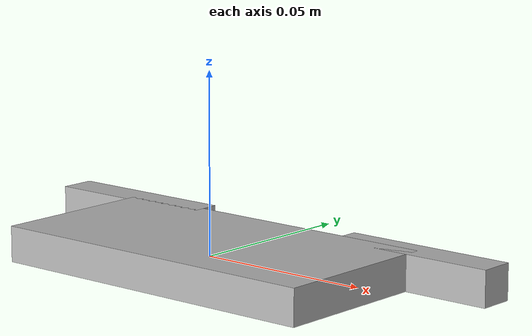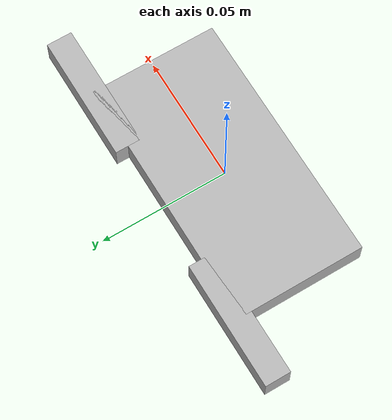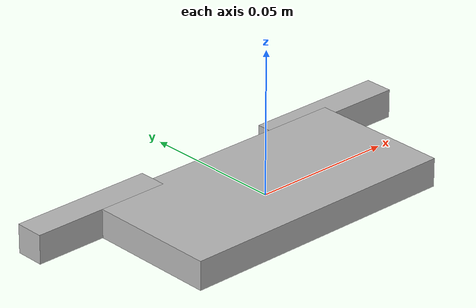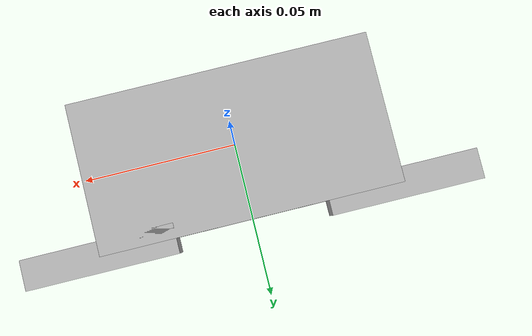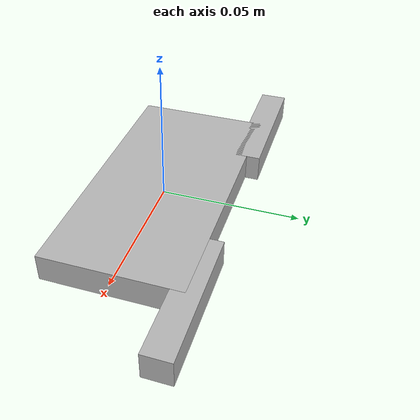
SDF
<?xml version="1.0" ?>
<sdf version="1.8">

  <world name="one_joint_gripper_world">

    <!-- LIGHT -->

    <light type="directional" name="sun">
        <cast_shadows>true</cast_shadows>
        <pose>0 0 10 0 0 0</pose>
        <diffuse>0.8 0.8 0.8 1</diffuse>
        <specular>0.2 0.2 0.2 1</specular>
        <attenuation>
            <range>1000</range>
            <constant>0.9</constant>
            <linear>0.01</linear>
            <quadratic>0.001</quadratic>
        </attenuation>
        <direction>-0.5 0.1 -0.9</direction>
    </light>

    <model name="one_joint_gripper">

      <!-- Base link -->
      <link name="base_link">
        <pose>0 0 0 0 0 0</pose>
        <collision name="base_collision">
          <geometry>
            <box>
              <size>0.1 0.05 0.01</size>
            </box>
          </geometry>
        </collision>
        <visual name="base_visual">
          <geometry>
            <box>
              <size>0.1 0.05 0.01</size>
            </box>
          </geometry>
        </visual>
      </link>

      <!-- Left finger -->
      <link name="finger_left">
        <pose>0.05 0.025 0 0 0 0</pose>
        <collision name="finger_left_collision">
          <geometry>
            <box>
              <size>0.05 0.01 0.01</size>
            </box>
          </geometry>
        </collision>
        <visual name="finger_left_visual">
          <geometry>
            <box>
              <size>0.05 0.01 0.01</size>
            </box>
          </geometry>
        </visual>
      </link>

      <!-- Right finger (static, does not move) -->
      <link name="finger_right">
        <pose>-0.05 0.025 0 0 0 0</pose>
        <collision name="finger_right_collision">
          <geometry>
            <box>
              <size>0.05 0.01 0.01</size>
            </box>
          </geometry>
        </collision>
        <visual name="finger_right_visual">
          <geometry>
            <box>
              <size>0.05 0.01 0.01</size>
            </box>
          </geometry>
        </visual>
      </link>

      <!-- Joint for left finger -->
      <joint name="left_finger_joint" type="revolute">
        <parent>base_link</parent>
        <child>finger_left</child>
        <axis>
          <xyz>0 1 0</xyz>
          <limit>
            <lower>-0.5</lower>
            <upper>0</upper>
          </limit>
        </axis>
      </joint>
    </model>
  </world>
</sdf>
